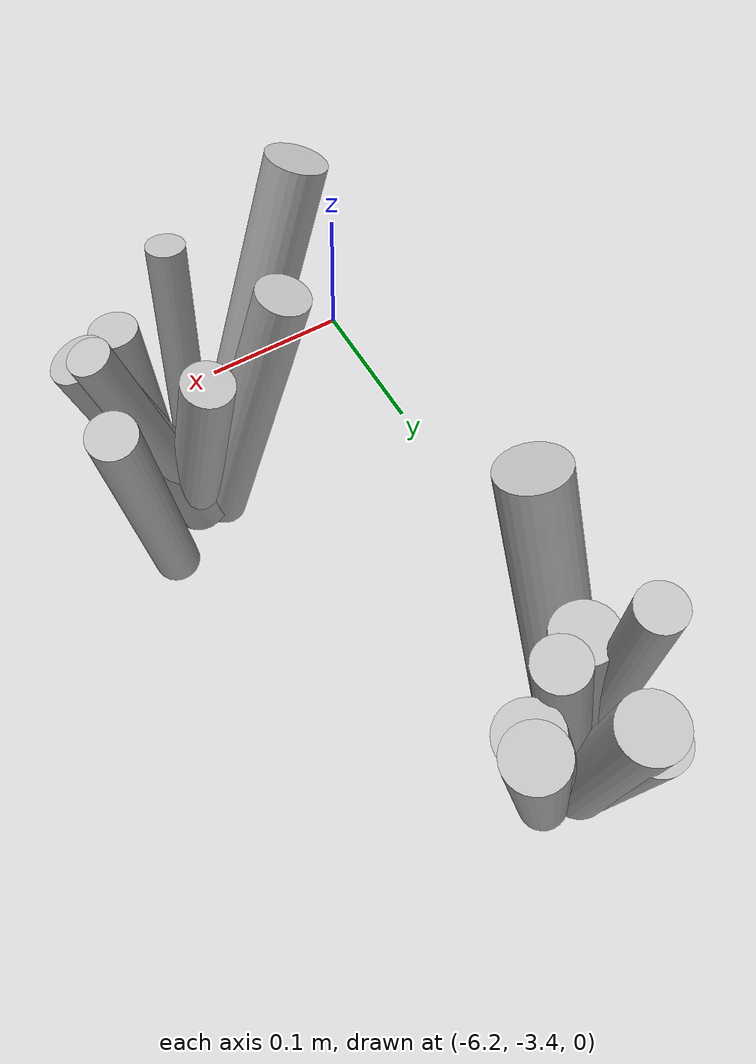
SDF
<sdf version="1.6">
 <world name="default">
  <model name="tussocks">
   <static>true</static>
   <link name="tuft25_0">
    <pose>-6.1514 -2.9993 0.0646 0 0.1895 1.4449</pose>
    <visual name="tuft25_0_v">
     <geometry><cylinder><radius>0.0179</radius><length>0.1404</length></cylinder></geometry>
     <material>
      <script>
       <uri>model://bushfire/materials/scripts</uri>
       <uri>model://bushfire/materials/textures</uri>
       <name>Bushfire/Foliage2</name>
      </script>
     </material>
    </visual>
   </link>
   <link name="tuft25_1">
    <pose>-6.1449 -3.0335 0.0860 0 0.1338 5.8323</pose>
    <visual name="tuft25_1_v">
     <geometry><cylinder><radius>0.0177</radius><length>0.1870</length></cylinder></geometry>
     <material>
      <script>
       <uri>model://bushfire/materials/scripts</uri>
       <uri>model://bushfire/materials/textures</uri>
       <name>Bushfire/Tussock</name>
      </script>
     </material>
    </visual>
   </link>
   <link name="tuft25_2">
    <pose>-6.1506 -3.0660 0.1086 0 0.3762 4.8323</pose>
    <visual name="tuft25_2_v">
     <geometry><cylinder><radius>0.0199</radius><length>0.2360</length></cylinder></geometry>
     <material>
      <script>
       <uri>model://bushfire/materials/scripts</uri>
       <uri>model://bushfire/materials/textures</uri>
       <name>Bushfire/Tussock</name>
      </script>
     </material>
    </visual>
   </link>
   <link name="tuft25_4">
    <pose>-6.0903 -2.9994 0.1216 0 0.2893 0.4227</pose>
    <visual name="tuft25_4_v">
     <geometry><cylinder><radius>0.0149</radius><length>0.2644</length></cylinder></geometry>
     <material>
      <script>
       <uri>model://bushfire/materials/scripts</uri>
       <uri>model://bushfire/materials/textures</uri>
       <name>Bushfire/Foliage2</name>
      </script>
     </material>
    </visual>
   </link>
   <link name="tuft25_5">
    <pose>-6.1452 -3.0010 0.0769 0 0.1576 1.2275</pose>
    <visual name="tuft25_5_v">
     <geometry><cylinder><radius>0.0190</radius><length>0.1671</length></cylinder></geometry>
     <material>
      <script>
       <uri>model://bushfire/materials/scripts</uri>
       <uri>model://bushfire/materials/textures</uri>
       <name>Bushfire/Foliage2</name>
      </script>
     </material>
    </visual>
   </link>
   <link name="tuft25_7">
    <pose>-6.1302 -3.0279 0.0931 0 0.2075 0.0246</pose>
    <visual name="tuft25_7_v">
     <geometry><cylinder><radius>0.0148</radius><length>0.2023</length></cylinder></geometry>
     <material>
      <script>
       <uri>model://bushfire/materials/scripts</uri>
       <uri>model://bushfire/materials/textures</uri>
       <name>Bushfire/Tussock</name>
      </script>
     </material>
    </visual>
   </link>
   <link name="tuft25_8">
    <pose>-6.1514 -3.0242 0.1144 0 0.1064 0.8642</pose>
    <visual name="tuft25_8_v">
     <geometry><cylinder><radius>0.0125</radius><length>0.2486</length></cylinder></geometry>
     <material>
      <script>
       <uri>model://bushfire/materials/scripts</uri>
       <uri>model://bushfire/materials/textures</uri>
       <name>Bushfire/Foliage2</name>
      </script>
     </material>
    </visual>
   </link>
   <link name="tuft25_9">
    <pose>-6.1125 -3.0193 0.0799 0 0.3054 0.2142</pose>
    <visual name="tuft25_9_v">
     <geometry><cylinder><radius>0.0182</radius><length>0.1737</length></cylinder></geometry>
     <material>
      <script>
       <uri>model://bushfire/materials/scripts</uri>
       <uri>model://bushfire/materials/textures</uri>
       <name>Bushfire/Tussock</name>
      </script>
     </material>
    </visual>
   </link>
   <link name="tuft174_0">
    <pose>-6.0212 -3.3086 0.0834 0 0.2652 5.9942</pose>
    <visual name="tuft174_0_v">
     <geometry><cylinder><radius>0.0132</radius><length>0.1812</length></cylinder></geometry>
     <material>
      <script>
       <uri>model://bushfire/materials/scripts</uri>
       <uri>model://bushfire/materials/textures</uri>
       <name>Bushfire/Foliage2</name>
      </script>
     </material>
    </visual>
   </link>
   <link name="tuft174_1">
    <pose>-5.9981 -3.2646 0.0867 0 0.1715 0.7588</pose>
    <visual name="tuft174_1_v">
     <geometry><cylinder><radius>0.0148</radius><length>0.1884</length></cylinder></geometry>
     <material>
      <script>
       <uri>model://bushfire/materials/scripts</uri>
       <uri>model://bushfire/materials/textures</uri>
       <name>Bushfire/Foliage2</name>
      </script>
     </material>
    </visual>
   </link>
   <link name="tuft174_2">
    <pose>-6.0196 -3.3176 0.0740 0 0.3761 5.6471</pose>
    <visual name="tuft174_2_v">
     <geometry><cylinder><radius>0.0183</radius><length>0.1608</length></cylinder></geometry>
     <material>
      <script>
       <uri>model://bushfire/materials/scripts</uri>
       <uri>model://bushfire/materials/textures</uri>
       <name>Bushfire/Tussock</name>
      </script>
     </material>
    </visual>
   </link>
   <link name="tuft174_3">
    <pose>-6.0256 -3.3357 0.0722 0 0.1157 5.1017</pose>
    <visual name="tuft174_3_v">
     <geometry><cylinder><radius>0.0150</radius><length>0.1569</length></cylinder></geometry>
     <material>
      <script>
       <uri>model://bushfire/materials/scripts</uri>
       <uri>model://bushfire/materials/textures</uri>
       <name>Bushfire/Tussock</name>
      </script>
     </material>
    </visual>
   </link>
   <link name="tuft174_5">
    <pose>-6.0995 -3.3235 0.1135 0 0.3946 3.4635</pose>
    <visual name="tuft174_5_v">
     <geometry><cylinder><radius>0.0183</radius><length>0.2467</length></cylinder></geometry>
     <material>
      <script>
       <uri>model://bushfire/materials/scripts</uri>
       <uri>model://bushfire/materials/textures</uri>
       <name>Bushfire/Foliage2</name>
      </script>
     </material>
    </visual>
   </link>
   <link name="tuft174_6">
    <pose>-6.0451 -3.2951 0.0706 0 0.1869 2.2124</pose>
    <visual name="tuft174_6_v">
     <geometry><cylinder><radius>0.0164</radius><length>0.1535</length></cylinder></geometry>
     <material>
      <script>
       <uri>model://bushfire/materials/scripts</uri>
       <uri>model://bushfire/materials/textures</uri>
       <name>Bushfire/Tussock</name>
      </script>
     </material>
    </visual>
   </link>
   <link name="tuft174_7">
    <pose>-6.0576 -3.3385 0.0901 0 0.1949 4.2253</pose>
    <visual name="tuft174_7_v">
     <geometry><cylinder><radius>0.0118</radius><length>0.1958</length></cylinder></geometry>
     <material>
      <script>
       <uri>model://bushfire/materials/scripts</uri>
       <uri>model://bushfire/materials/textures</uri>
       <name>Bushfire/Foliage2</name>
      </script>
     </material>
    </visual>
   </link>
   <link name="tuft174_8">
    <pose>-6.0811 -3.2947 0.0907 0 0.2774 2.9397</pose>
    <visual name="tuft174_8_v">
     <geometry><cylinder><radius>0.0167</radius><length>0.1972</length></cylinder></geometry>
     <material>
      <script>
       <uri>model://bushfire/materials/scripts</uri>
       <uri>model://bushfire/materials/textures</uri>
       <name>Bushfire/Foliage2</name>
      </script>
     </material>
    </visual>
   </link>
  </model>
 </world>
</sdf>
